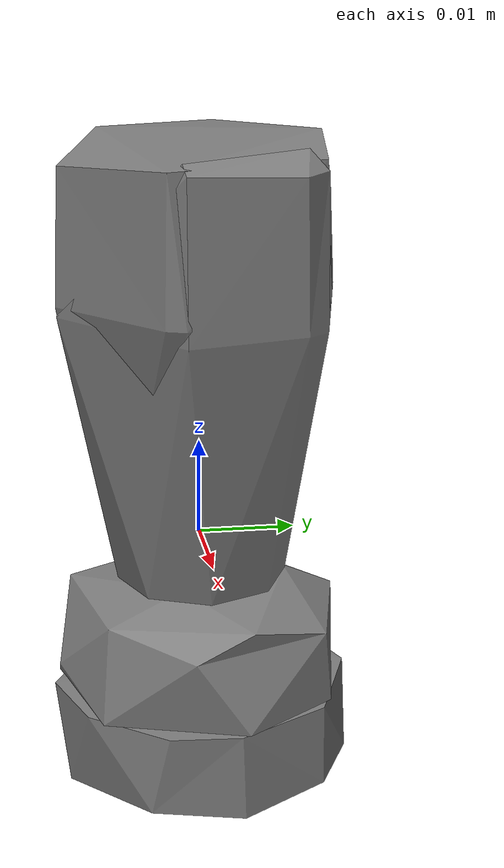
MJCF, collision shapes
<mujoco model="c_toy_airplane">
  <compiler angle="radian" />

  <asset>
    <mesh name="c_toy_airplane_visual_mesh" file="c_toy_airplane/textured.obj" />
    <mesh name="c_toy_airplane_collision_mesh_0" file="c_toy_airplane/textured_coacd_0.stl" />
    <mesh name="c_toy_airplane_collision_mesh_1" file="c_toy_airplane/textured_coacd_1.stl" />
    <mesh name="c_toy_airplane_collision_mesh_2" file="c_toy_airplane/textured_coacd_2.stl" />
    <mesh name="c_toy_airplane_collision_mesh_3" file="c_toy_airplane/textured_coacd_3.stl" />
    <texture name="c_toy_airplane_texture" type="2d" file="c_toy_airplane/texture_map.png" />
    <material name="c_toy_airplane_material" texture="c_toy_airplane_texture" />
  </asset>

  <worldbody>
    <body name="c_toy_airplane" pos="0 0 0" euler="0 0 0">
      <freejoint name="c_toy_airplane_joint" />
      <geom name="c_toy_airplane_visual_geom" type="mesh" mesh="c_toy_airplane_visual_mesh" material="c_toy_airplane_material" pos="0.033398753233434206 -0.003384443109879014 -0.02614525198224048" euler="0 0 0" contype="0" conaffinity="0" group="0" />
      <geom name="c_toy_airplane_collision_geom_0" type="mesh" mesh="c_toy_airplane_collision_mesh_0" pos="0.033398753233434206 -0.003384443109879014 -0.02614525198224048" euler="0 0 0" contype="1" conaffinity="1" group="3" />
      <geom name="c_toy_airplane_collision_geom_1" type="mesh" mesh="c_toy_airplane_collision_mesh_1" pos="0.033398753233434206 -0.003384443109879014 -0.02614525198224048" euler="0 0 0" contype="1" conaffinity="1" group="3" />
      <geom name="c_toy_airplane_collision_geom_2" type="mesh" mesh="c_toy_airplane_collision_mesh_2" pos="0.033398753233434206 -0.003384443109879014 -0.02614525198224048" euler="0 0 0" contype="1" conaffinity="1" group="3" />
      <geom name="c_toy_airplane_collision_geom_3" type="mesh" mesh="c_toy_airplane_collision_mesh_3" pos="0.033398753233434206 -0.003384443109879014 -0.02614525198224048" euler="0 0 0" contype="1" conaffinity="1" group="3" />
      <inertial pos="0 0 0" euler="0 0 0" mass="0.114" diaginertia="0.001 0.001 0.001" />
    </body>
  </worldbody>
</mujoco>
